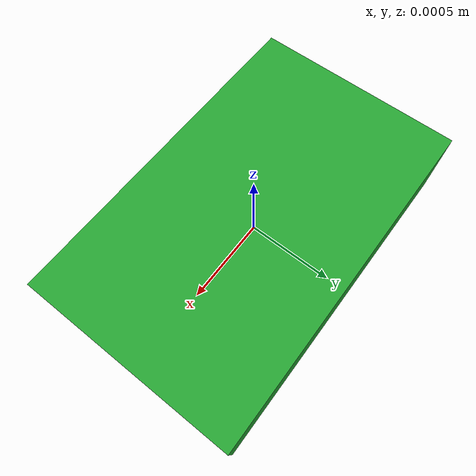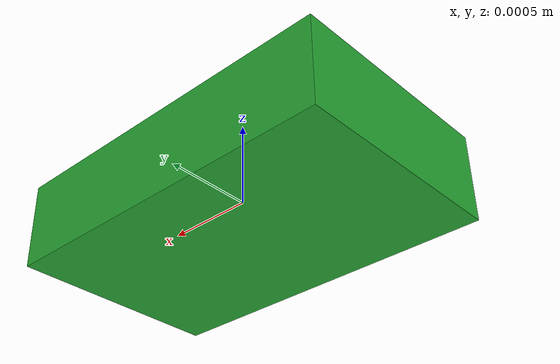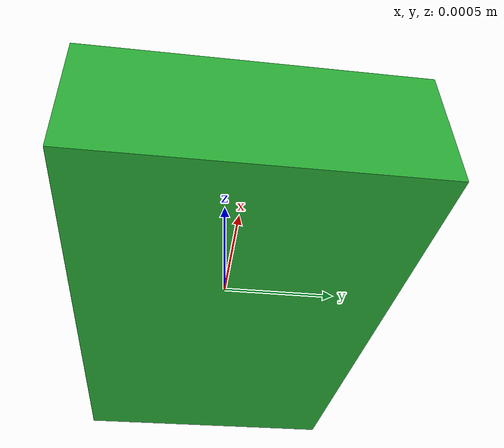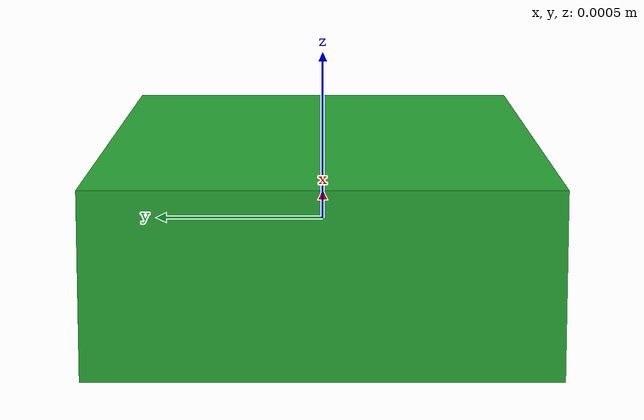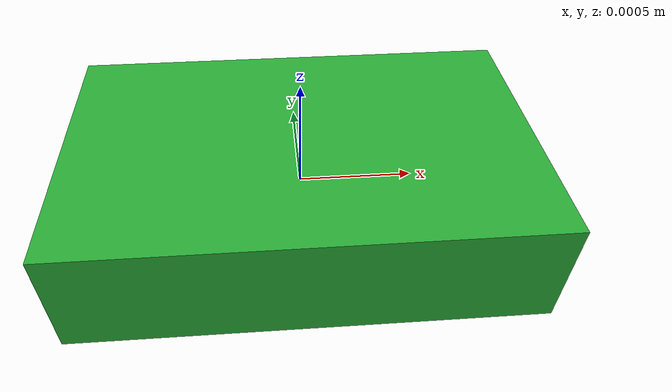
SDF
<?xml version="1.0" ?>
<sdf version="1.5">
  <model name="table">
    <static>false</static>
    <inertial>
      <mass></mass>
    </inertial>
    <link name="link">
      <collision name="collision">
        <geometry>
          <box>
            <size>1 1 0.1</size>
          </box>
        </geometry>
      </collision>
      <visual name="visual">
        <geometry>
          <box>
            <size>0.002 0.00125 0.0005</size>
          </box>
        </geometry>
        <material>
          <script>
            <uri>file://media/materials/scripts/gazebo.material</uri>
            <name>Gazebo/Green</name>
          </script>
        </material>
      </visual>
    </link>
  </model>

</sdf>
